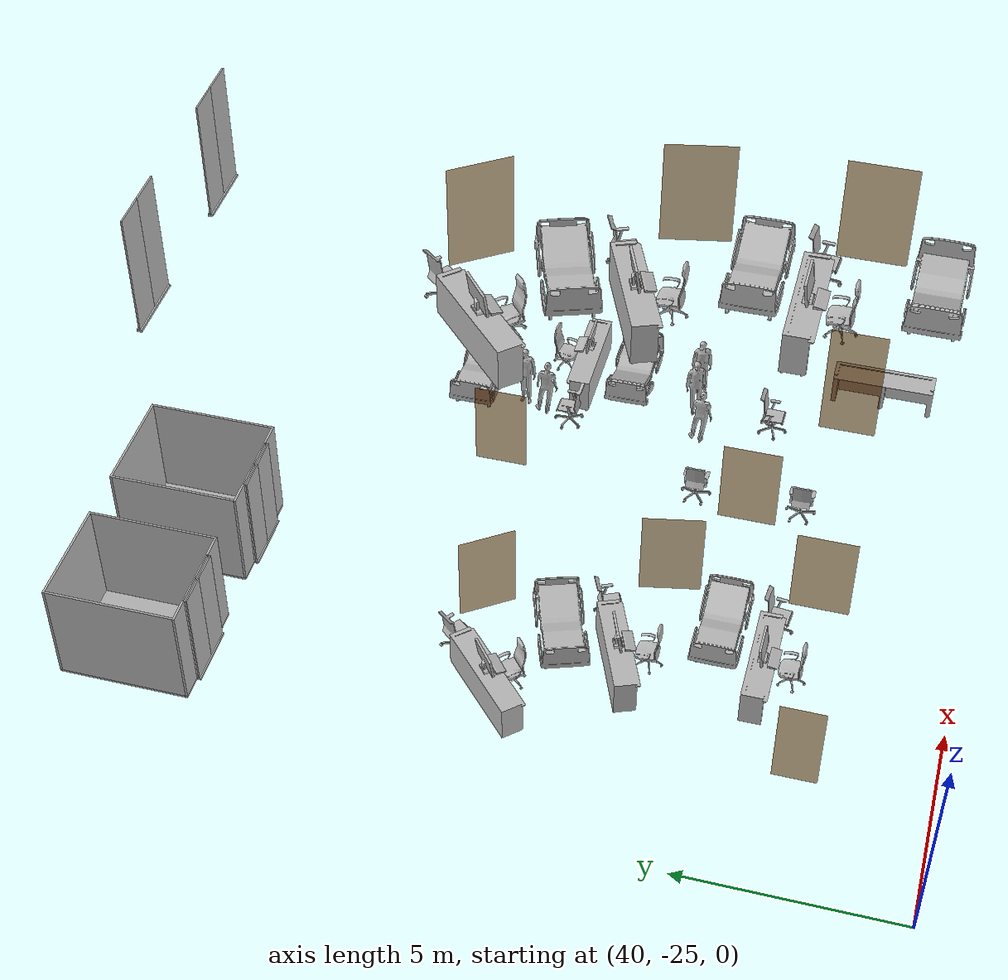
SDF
<sdf version="1.7">
 <world name="sim_world">
  <include>
   <name>OpenRobotics/CGMVanguard_9</name>
   <uri>model://CGMVanguard</uri>
   <pose>46.53240644590597 -19.81446098226993 0.0 0 0 -3.1416</pose>
   <static>True</static>
  </include>
  <include>
   <name>OpenRobotics/CGMVanguard_10</name>
   <uri>model://CGMVanguard</uri>
   <pose>45.574116380139266 -16.358101611476496 0.0 0 0 -2.7959</pose>
   <static>True</static>
  </include>
  <include>
   <name>OpenRobotics/CGMVanguard_11</name>
   <uri>model://CGMVanguard</uri>
   <pose>54.18809276566291 -16.056601669166582 0.0 0 0 0.0092</pose>
   <static>True</static>
  </include>
  <include>
   <name>OpenRobotics/CGMVanguard_12</name>
   <uri>model://CGMVanguard</uri>
   <pose>53.37574708665056 -12.342248375062509 0.0 0 0 -3.1416</pose>
   <static>True</static>
  </include>
  <include>
   <name>OpenRobotics/NurseTable_6</name>
   <uri>model://NurseTable</uri>
   <pose>54.19215799392336 -14.938960039998475 0.0 0 0 3.1416</pose>
   <static>True</static>
  </include>
  <include>
   <name>OpenRobotics/NurseTable_7</name>
   <uri>model://NurseTable</uri>
   <pose>44.96476289373489 -17.75605553632554 0.0 0 0 0.3883</pose>
   <static>True</static>
  </include>
  <include>
   <name>OpenRobotics/NurseTable_8</name>
   <uri>model://NurseTable</uri>
   <pose>43.50017691627249 -15.209822699126969 0.0 0 0 0.7491</pose>
   <static>True</static>
  </include>
  <include>
   <name>OpenRobotics/NurseTable_9</name>
   <uri>model://NurseTable</uri>
   <pose>45.44847121264571 -20.873358716972444 0.0 0 0 0.0053</pose>
   <static>True</static>
  </include>
  <include>
   <name>OpenRobotics/NurseTable_39</name>
   <uri>model://NurseTable</uri>
   <pose>55.14657128571983 -22.179885389023518 0.0 0 0 -1.5708</pose>
   <static>True</static>
  </include>
  <include>
   <name>OpenRobotics/DeskChair_30</name>
   <uri>model://DeskChair</uri>
   <pose>44.072970270374256 -15.638906195915554 0.0 0 0 2.263</pose>
   <static>True</static>
  </include>
  <include>
   <name>OpenRobotics/DeskChair_31</name>
   <uri>model://DeskChair</uri>
   <pose>45.34390600361529 -18.408080458443923 0.0 0 0 1.5708</pose>
   <static>True</static>
  </include>
  <include>
   <name>OpenRobotics/DeskChair_32</name>
   <uri>model://DeskChair</uri>
   <pose>45.6332371831853 -21.538925425945173 0.0 0 0 1.5708</pose>
   <static>True</static>
  </include>
  <include>
   <name>OpenRobotics/DeskChair_46</name>
   <uri>model://DeskChair</uri>
   <pose>54.57913541786859 -14.209534248682756 0.0 0 0 -1.715</pose>
   <static>True</static>
  </include>
  <include>
   <name>OpenRobotics/OfficeChairGrey_12</name>
   <uri>model://OfficeChairGrey</uri>
   <pose>53.49544248298147 -19.837371639552345 0.0 0 0 -0.016</pose>
   <static>True</static>
  </include>
  <include>
   <name>OpenRobotics/OfficeChairGrey_13</name>
   <uri>model://OfficeChairGrey</uri>
   <pose>52.55249798084694 -14.678946963578337 0.0 0 0 3.1246</pose>
   <static>True</static>
  </include>
  <include>
   <name>OpenRobotics/OfficeChairGrey_14</name>
   <uri>model://OfficeChairGrey</uri>
   <pose>44.86480135379412 -14.257401638398536 0.0 0 0 0.937</pose>
   <static>True</static>
  </include>
  <include>
   <name>OpenRobotics/OfficeChairGrey_15</name>
   <uri>model://OfficeChairGrey</uri>
   <pose>46.539890773431836 -17.36355909388102 0.0 0 0 0.4229</pose>
   <static>True</static>
  </include>
  <include>
   <name>OpenRobotics/OfficeChairGrey_16</name>
   <uri>model://OfficeChairGrey</uri>
   <pose>47.03910618822357 -21.11309949617324 0.0 0 0 -0.09</pose>
   <static>True</static>
  </include>
  <include>
   <name>OpenRobotics/OfficeChairGrey_43</name>
   <uri>model://OfficeChairGrey</uri>
   <pose>50.910684204453716 -18.35084419830008 0.0 0 0 1.5708</pose>
   <static>True</static>
  </include>
  <include>
   <name>OpenRobotics/OfficeChairGrey_44</name>
   <uri>model://OfficeChairGrey</uri>
   <pose>50.910684204453716 -20.88014307142035 0.0 0 0 1.5708</pose>
   <static>True</static>
  </include>
  <include>
   <name>OpenRobotics/MonitorAndKeyboard_41</name>
   <uri>model://MonitorAndKeyboard</uri>
   <pose>45.42830660359221 -20.883266028229702 0.86 0 0 1.5708</pose>
   <static>True</static>
  </include>
  <include>
   <name>OpenRobotics/MonitorAndKeyboard_44</name>
   <uri>model://MonitorAndKeyboard</uri>
   <pose>43.56648590438834 -15.17563170647284 0.86 0 0 2.255</pose>
   <static>True</static>
  </include>
  <include>
   <name>OpenRobotics/MonitorAndKeyboard_45</name>
   <uri>model://MonitorAndKeyboard</uri>
   <pose>45.00705742086847 -17.749325025960555 0.86 0 0 1.9445</pose>
   <static>True</static>
  </include>
  <include>
   <name>OpenRobotics/MonitorAndKeyboard_46</name>
   <uri>model://MonitorAndKeyboard</uri>
   <pose>54.451498019306996 -14.897580862274541 0.86 0 0 -1.5706</pose>
   <static>True</static>
  </include>
  <include>
   <name>OpenRobotics/OpScrubs</name>
   <uri>model://OpScrubs</uri>
   <pose>53.03362178377759 -13.572127995077125 0.0 0 0 -1.5513</pose>
   <static>True</static>
  </include>
  <include>
   <name>OpenRobotics/OpScrubs_2</name>
   <uri>model://OpScrubs</uri>
   <pose>53.69881158416989 -17.76114380216147 0.0 0 0 -1.1219</pose>
   <static>True</static>
  </include>
  <include>
   <name>OpenRobotics/OpScrubs_3</name>
   <uri>model://OpScrubs</uri>
   <pose>54.4627245105958 -17.74294450213455 0.0 0 0 -1.3103</pose>
   <static>True</static>
  </include>
  <include>
   <name>OpenRobotics/Scrubs</name>
   <uri>model://Scrubs</uri>
   <pose>52.69475404792128 -18.06555132494906 0.0 0 0 -0.0141</pose>
   <static>True</static>
  </include>
  <include>
   <name>OpenRobotics/Scrubs_3</name>
   <uri>model://Scrubs</uri>
   <pose>52.74878658513139 -14.176177839313883 0.0 0 0 0.1185</pose>
   <static>True</static>
  </include>
  <model name="L1_right_consult_rm_1_outer">
   <pose>46.068297373178 -14.530337294719446 0.0 0 0 2.1863116312176896</pose>
   <static>true</static>
   <link name="right">
    <pose>0 0 1.11 0 0 0</pose>
    <visual name="right_visual">
     <geometry><box><size>1.3227213939192073 0.03 2.2</size></box></geometry>
     <material>
      <ambient>0.5 0.25 0 0.6</ambient>
      <diffuse>0.5 0.25 0 0.6</diffuse>
      <pbr><metal><metalness>0.0</metalness></metal></pbr>
     </material>
    </visual>
    <collision name="right_collision">
     <geometry><box><size>1.3227213939192073 0.03 2.2</size></box></geometry>
     <surface><contact><collide_bitmask>0x02</collide_bitmask></contact></surface>
    </collision>
    <inertial>
     <mass>50.0</mass>
     <inertia><ixx>20.17041666666667</ixx><iyy>27.456632858048216</iyy><izz>7.293716191381544</izz></inertia>
    </inertial>
   </link>
   <joint name="right_joint" type="prismatic">
    <parent>world</parent>
    <child>right</child>
    <axis>
     <xyz>1 0 0</xyz>
     <limit><lower>0.0</lower><upper>1.3327213939192073</upper><effort>500.0</effort></limit>
    </axis>
   </joint>
  </model>
  <model name="L1_right_consult_rm_2_outer">
   <pose>47.68885619783859 -18.3893427175878 0.0 0 0 1.769259662102772</pose>
   <static>true</static>
   <link name="right">
    <pose>0 0 1.11 0 0 0</pose>
    <visual name="right_visual">
     <geometry><box><size>1.409133850260675 0.03 2.2</size></box></geometry>
     <material>
      <ambient>0.5 0.25 0 0.6</ambient>
      <diffuse>0.5 0.25 0 0.6</diffuse>
      <pbr><metal><metalness>0.0</metalness></metal></pbr>
     </material>
    </visual>
    <collision name="right_collision">
     <geometry><box><size>1.409133850260675 0.03 2.2</size></box></geometry>
     <surface><contact><collide_bitmask>0x02</collide_bitmask></contact></surface>
    </collision>
    <inertial>
     <mass>50.0</mass>
     <inertia><ixx>20.17041666666667</ixx><iyy>28.440242533126984</iyy><izz>8.277325866460309</izz></inertia>
    </inertial>
   </link>
   <joint name="right_joint" type="prismatic">
    <parent>world</parent>
    <child>right</child>
    <axis>
     <xyz>1 0 0</xyz>
     <limit><lower>0.0</lower><upper>1.419133850260675</upper><effort>500.0</effort></limit>
    </axis>
   </joint>
  </model>
  <model name="L1_right_consult_rm_3_outer">
   <pose>47.92979500788435 -21.793661782239163 0.0 0 0 1.5707963267948966</pose>
   <static>true</static>
   <link name="right">
    <pose>0 0 1.11 0 0 0</pose>
    <visual name="right_visual">
     <geometry><box><size>1.3657163186031285 0.03 2.2</size></box></geometry>
     <material>
      <ambient>0.5 0.25 0 0.6</ambient>
      <diffuse>0.5 0.25 0 0.6</diffuse>
      <pbr><metal><metalness>0.0</metalness></metal></pbr>
     </material>
    </visual>
    <collision name="right_collision">
     <geometry><box><size>1.3657163186031285 0.03 2.2</size></box></geometry>
     <surface><contact><collide_bitmask>0x02</collide_bitmask></contact></surface>
    </collision>
    <inertial>
     <mass>50.0</mass>
     <inertia><ixx>20.17041666666667</ixx><iyy>27.938254428745346</iyy><izz>7.775337762078674</izz></inertia>
    </inertial>
   </link>
   <joint name="right_joint" type="prismatic">
    <parent>world</parent>
    <child>right</child>
    <axis>
     <xyz>1 0 0</xyz>
     <limit><lower>0.0</lower><upper>1.3757163186031285</upper><effort>500.0</effort></limit>
    </axis>
   </joint>
  </model>
  <model name="L1_right_procedure">
   <pose>50.74072535671709 -13.553592169531953 0.0 0 0 1.5707963267948966</pose>
   <link name="right">
    <pose>0 0 1.11 0 0 0</pose>
    <visual name="right_visual">
     <geometry><box><size>1.2479862312987977 0.03 2.2</size></box></geometry>
     <material>
      <ambient>0.5 0.25 0 0.6</ambient>
      <diffuse>0.5 0.25 0 0.6</diffuse>
      <pbr><metal><metalness>0.0</metalness></metal></pbr>
     </material>
    </visual>
    <collision name="right_collision">
     <geometry><box><size>1.2479862312987977 0.03 2.2</size></box></geometry>
     <surface><contact><collide_bitmask>0x02</collide_bitmask></contact></surface>
    </collision>
    <inertial>
     <mass>50.0</mass>
     <inertia><ixx>20.17041666666667</ixx><iyy>26.656123472964072</iyy><izz>6.493206806297401</izz></inertia>
    </inertial>
   </link>
   <joint name="right_joint" type="prismatic">
    <parent>world</parent>
    <child>right</child>
    <axis>
     <xyz>1 0 0</xyz>
     <limit><lower>0.0</lower><upper>1.2579862312987977</upper><effort>500.0</effort></limit>
    </axis>
   </joint>
   <plugin name="door" filename="libdoor.so">
    <v_max_door>0.2</v_max_door>
    <a_max_door>0.2</a_max_door>
    <a_nom_door>0.08</a_nom_door>
    <dx_min_door>0.001</dx_min_door>
    <f_max_door>100.0</f_max_door>
    <door name="L1_right_procedure" type="SlidingDoor" left_joint_name="empty_joint" right_joint_name="right_joint"/>
   </plugin>
  </model>
  <model name="L1_right_treatment">
   <pose>50.29120803046041 -19.682408368908906 0.0 0 0 1.5707963267948966</pose>
   <link name="right">
    <pose>0 0 1.11 0 0 0</pose>
    <visual name="right_visual">
     <geometry><box><size>1.3636702434521746 0.03 2.2</size></box></geometry>
     <material>
      <ambient>0.5 0.25 0 0.6</ambient>
      <diffuse>0.5 0.25 0 0.6</diffuse>
      <pbr><metal><metalness>0.0</metalness></metal></pbr>
     </material>
    </visual>
    <collision name="right_collision">
     <geometry><box><size>1.3636702434521746 0.03 2.2</size></box></geometry>
     <surface><contact><collide_bitmask>0x02</collide_bitmask></contact></surface>
    </collision>
    <inertial>
     <mass>50.0</mass>
     <inertia><ixx>20.17041666666667</ixx><iyy>27.91498555365381</iyy><izz>7.7520688869871375</izz></inertia>
    </inertial>
   </link>
   <joint name="right_joint" type="prismatic">
    <parent>world</parent>
    <child>right</child>
    <axis>
     <xyz>1 0 0</xyz>
     <limit><lower>0.0</lower><upper>1.3736702434521746</upper><effort>500.0</effort></limit>
    </axis>
   </joint>
   <plugin name="door" filename="libdoor.so">
    <v_max_door>0.2</v_max_door>
    <a_max_door>0.2</a_max_door>
    <a_nom_door>0.08</a_nom_door>
    <dx_min_door>0.001</dx_min_door>
    <f_max_door>100.0</f_max_door>
    <door name="L1_right_treatment" type="SlidingDoor" left_joint_name="empty_joint" right_joint_name="right_joint"/>
   </plugin>
  </model>
  <model name="L1_right_consult_rm_3_inner">
   <pose>43.04524825968236 -22.06440329218109 0.0 0 0 -1.5707963267948966</pose>
   <static>true</static>
   <link name="right">
    <pose>0 0 1.11 0 0 0</pose>
    <visual name="right_visual">
     <geometry><box><size>0.9831271874158689 0.03 2.2</size></box></geometry>
     <material>
      <ambient>0.5 0.25 0 0.6</ambient>
      <diffuse>0.5 0.25 0 0.6</diffuse>
      <pbr><metal><metalness>0.0</metalness></metal></pbr>
     </material>
    </visual>
    <collision name="right_collision">
     <geometry><box><size>0.9831271874158689 0.03 2.2</size></box></geometry>
     <surface><contact><collide_bitmask>0x02</collide_bitmask></contact></surface>
    </collision>
    <inertial>
     <mass>50.0</mass>
     <inertia><ixx>20.17041666666667</ixx><iyy>24.193912777650993</iyy><izz>4.030996110984321</izz></inertia>
    </inertial>
   </link>
   <joint name="right_joint" type="prismatic">
    <parent>world</parent>
    <child>right</child>
    <axis>
     <xyz>1 0 0</xyz>
     <limit><lower>0.0</lower><upper>0.9931271874158689</upper><effort>500.0</effort></limit>
    </axis>
   </joint>
  </model>
  <include>
   <name>OpenRobotics/CGMVanguard_28</name>
   <uri>model://CGMVanguard</uri>
   <pose>46.58625052882586 -23.184696742433005 10.0 0 0 -0.0029</pose>
   <static>True</static>
  </include>
  <include>
   <name>OpenRobotics/CGMVanguard_29</name>
   <uri>model://CGMVanguard</uri>
   <pose>46.53240644590597 -19.81446098226993 10.0 0 0 -3.1416</pose>
   <static>True</static>
  </include>
  <include>
   <name>OpenRobotics/CGMVanguard_30</name>
   <uri>model://CGMVanguard</uri>
   <pose>45.574116380139266 -16.358101611476496 10.0 0 0 -2.7959</pose>
   <static>True</static>
  </include>
  <include>
   <name>OpenRobotics/NurseTable_49</name>
   <uri>model://NurseTable</uri>
   <pose>44.96476289373489 -17.75605553632554 10.0 0 0 0.3883</pose>
   <static>True</static>
  </include>
  <include>
   <name>OpenRobotics/NurseTable_50</name>
   <uri>model://NurseTable</uri>
   <pose>43.50017691627249 -15.209822699126969 10.0 0 0 0.7491</pose>
   <static>True</static>
  </include>
  <include>
   <name>OpenRobotics/NurseTable_51</name>
   <uri>model://NurseTable</uri>
   <pose>45.44847121264571 -20.873358716972444 10.0 0 0 0.0053</pose>
   <static>True</static>
  </include>
  <include>
   <name>OpenRobotics/DeskChair_70</name>
   <uri>model://DeskChair</uri>
   <pose>44.072970270374256 -15.638906195915554 10.0 0 0 2.263</pose>
   <static>True</static>
  </include>
  <include>
   <name>OpenRobotics/DeskChair_71</name>
   <uri>model://DeskChair</uri>
   <pose>45.34390600361529 -18.408080458443923 10.0 0 0 1.5708</pose>
   <static>True</static>
  </include>
  <include>
   <name>OpenRobotics/DeskChair_72</name>
   <uri>model://DeskChair</uri>
   <pose>45.6332371831853 -21.538925425945173 10.0 0 0 1.5708</pose>
   <static>True</static>
  </include>
  <include>
   <name>OpenRobotics/OfficeChairGrey_59</name>
   <uri>model://OfficeChairGrey</uri>
   <pose>44.86480135379412 -14.257401638398536 10.0 0 0 0.937</pose>
   <static>True</static>
  </include>
  <include>
   <name>OpenRobotics/OfficeChairGrey_60</name>
   <uri>model://OfficeChairGrey</uri>
   <pose>46.539890773431836 -17.36355909388102 10.0 0 0 0.4229</pose>
   <static>True</static>
  </include>
  <include>
   <name>OpenRobotics/OfficeChairGrey_61</name>
   <uri>model://OfficeChairGrey</uri>
   <pose>47.03910618822357 -21.11309949617324 10.0 0 0 -0.09</pose>
   <static>True</static>
  </include>
  <include>
   <name>OpenRobotics/MonitorAndKeyboard_84</name>
   <uri>model://MonitorAndKeyboard</uri>
   <pose>45.42830660359221 -20.883266028229702 10.86 0 0 1.5708</pose>
   <static>True</static>
  </include>
  <include>
   <name>OpenRobotics/MonitorAndKeyboard_87</name>
   <uri>model://MonitorAndKeyboard</uri>
   <pose>43.56648590438834 -15.17563170647284 10.86 0 0 2.255</pose>
   <static>True</static>
  </include>
  <include>
   <name>OpenRobotics/MonitorAndKeyboard_88</name>
   <uri>model://MonitorAndKeyboard</uri>
   <pose>45.00705742086847 -17.749325025960555 10.86 0 0 1.9445</pose>
   <static>True</static>
  </include>
  <model name="L2_right_consult_rm_1_outer">
   <pose>46.068297373178 -14.530337294719446 10.0 0 0 2.1863116312176896</pose>
   <static>true</static>
   <link name="right">
    <pose>0 0 1.11 0 0 0</pose>
    <visual name="right_visual">
     <geometry><box><size>1.3227213939192073 0.03 2.2</size></box></geometry>
     <material>
      <ambient>0.5 0.25 0 0.6</ambient>
      <diffuse>0.5 0.25 0 0.6</diffuse>
      <pbr><metal><metalness>0.0</metalness></metal></pbr>
     </material>
    </visual>
    <collision name="right_collision">
     <geometry><box><size>1.3227213939192073 0.03 2.2</size></box></geometry>
     <surface><contact><collide_bitmask>0x02</collide_bitmask></contact></surface>
    </collision>
    <inertial>
     <mass>50.0</mass>
     <inertia><ixx>20.17041666666667</ixx><iyy>27.456632858048216</iyy><izz>7.293716191381544</izz></inertia>
    </inertial>
   </link>
   <joint name="right_joint" type="prismatic">
    <parent>world</parent>
    <child>right</child>
    <axis>
     <xyz>1 0 0</xyz>
     <limit><lower>0.0</lower><upper>1.3327213939192073</upper><effort>500.0</effort></limit>
    </axis>
   </joint>
  </model>
  <model name="L2_right_consult_rm_2_outer">
   <pose>47.68885619783859 -18.3893427175878 10.0 0 0 1.769259662102772</pose>
   <static>true</static>
   <link name="right">
    <pose>0 0 1.11 0 0 0</pose>
    <visual name="right_visual">
     <geometry><box><size>1.409133850260675 0.03 2.2</size></box></geometry>
     <material>
      <ambient>0.5 0.25 0 0.6</ambient>
      <diffuse>0.5 0.25 0 0.6</diffuse>
      <pbr><metal><metalness>0.0</metalness></metal></pbr>
     </material>
    </visual>
    <collision name="right_collision">
     <geometry><box><size>1.409133850260675 0.03 2.2</size></box></geometry>
     <surface><contact><collide_bitmask>0x02</collide_bitmask></contact></surface>
    </collision>
    <inertial>
     <mass>50.0</mass>
     <inertia><ixx>20.17041666666667</ixx><iyy>28.440242533126984</iyy><izz>8.277325866460309</izz></inertia>
    </inertial>
   </link>
   <joint name="right_joint" type="prismatic">
    <parent>world</parent>
    <child>right</child>
    <axis>
     <xyz>1 0 0</xyz>
     <limit><lower>0.0</lower><upper>1.419133850260675</upper><effort>500.0</effort></limit>
    </axis>
   </joint>
  </model>
  <model name="L2_right_consult_rm_3_outer">
   <pose>47.92979500788435 -21.793661782239163 10.0 0 0 1.5707963267948966</pose>
   <static>true</static>
   <link name="right">
    <pose>0 0 1.11 0 0 0</pose>
    <visual name="right_visual">
     <geometry><box><size>1.3657163186031285 0.03 2.2</size></box></geometry>
     <material>
      <ambient>0.5 0.25 0 0.6</ambient>
      <diffuse>0.5 0.25 0 0.6</diffuse>
      <pbr><metal><metalness>0.0</metalness></metal></pbr>
     </material>
    </visual>
    <collision name="right_collision">
     <geometry><box><size>1.3657163186031285 0.03 2.2</size></box></geometry>
     <surface><contact><collide_bitmask>0x02</collide_bitmask></contact></surface>
    </collision>
    <inertial>
     <mass>50.0</mass>
     <inertia><ixx>20.17041666666667</ixx><iyy>27.938254428745346</iyy><izz>7.775337762078674</izz></inertia>
    </inertial>
   </link>
   <joint name="right_joint" type="prismatic">
    <parent>world</parent>
    <child>right</child>
    <axis>
     <xyz>1 0 0</xyz>
     <limit><lower>0.0</lower><upper>1.3757163186031285</upper><effort>500.0</effort></limit>
    </axis>
   </joint>
  </model>
  <model name="L2_right_consult_rm_3_inner">
   <pose>43.04524825968236 -22.06440329218109 10.0 0 0 -1.5707963267948966</pose>
   <static>true</static>
   <link name="right">
    <pose>0 0 1.11 0 0 0</pose>
    <visual name="right_visual">
     <geometry><box><size>0.9831271874158689 0.03 2.2</size></box></geometry>
     <material>
      <ambient>0.5 0.25 0 0.6</ambient>
      <diffuse>0.5 0.25 0 0.6</diffuse>
      <pbr><metal><metalness>0.0</metalness></metal></pbr>
     </material>
    </visual>
    <collision name="right_collision">
     <geometry><box><size>0.9831271874158689 0.03 2.2</size></box></geometry>
     <surface><contact><collide_bitmask>0x02</collide_bitmask></contact></surface>
    </collision>
    <inertial>
     <mass>50.0</mass>
     <inertia><ixx>20.17041666666667</ixx><iyy>24.193912777650993</iyy><izz>4.030996110984321</izz></inertia>
    </inertial>
   </link>
   <joint name="right_joint" type="prismatic">
    <parent>world</parent>
    <child>right</child>
    <axis>
     <xyz>1 0 0</xyz>
     <limit><lower>0.0</lower><upper>0.9931271874158689</upper><effort>500.0</effort></limit>
    </axis>
   </joint>
  </model>
  <model name="ShaftDoor_lift_1_L1_lift_1_door">
   <pose>43.072797723889636 -8.980481477122195 0.0 0 0 3.14</pose>
   <link name="right_door">
    <pose>0.35 0 1.25 0 0 0</pose>
    <visual name="right_door_visual">
     <geometry><box><size>0.7 0.03 2.5</size></box></geometry>
     <material>
      <ambient>0.5 0.5 0.5 1</ambient>
      <diffuse>0.7 0.7 0.7 1</diffuse>
      <specular>0.6 0.6 0.6 1</specular>
      <emissive>0.1 0.1 0.1 1</emissive>
     </material>
    </visual>
    <collision name="right_door_collision">
     <geometry><box><size>0.7 0.03 2.5</size></box></geometry>
     <surface><contact><collide_bitmask>0x02</collide_bitmask></contact></surface>
    </collision>
   </link>
   <joint name="right_joint" type="prismatic">
    <parent>world</parent>
    <child>right_door</child>
    <axis><xyz>1 0 0</xyz><limit><lower>0</lower><upper>0.7</upper></limit></axis>
   </joint>
   <link name="left_door">
    <pose>-0.35 0 1.25 0 0 0</pose>
    <visual name="left_door_visual">
     <geometry><box><size>0.7 0.03 2.5</size></box></geometry>
     <material>
      <ambient>0.5 0.5 0.5 1</ambient>
      <diffuse>0.7 0.7 0.7 1</diffuse>
      <specular>0.6 0.6 0.6 1</specular>
      <emissive>0.1 0.1 0.1 1</emissive>
     </material>
    </visual>
    <collision name="left_door_collision">
     <geometry><box><size>0.7 0.03 2.5</size></box></geometry>
     <surface><contact><collide_bitmask>0x02</collide_bitmask></contact></surface>
    </collision>
   </link>
   <joint name="left_joint" type="prismatic">
    <parent>world</parent>
    <child>left_door</child>
    <axis><xyz>1 0 0</xyz><limit><lower>-0.7</lower><upper>0</upper></limit></axis>
   </joint>
   <link name="ramp">
    <pose>0 0 -0.025 0 0 0</pose>
    <visual name="ramp_visual">
     <geometry><box><size>1.4 0.1 0.05</size></box></geometry>
     <material>
      <ambient>0.5 0.5 0.5 1</ambient>
      <diffuse>0.7 0.7 0.7 1</diffuse>
      <specular>0.6 0.6 0.6 1</specular>
      <emissive>0.1 0.1 0.1 1</emissive>
     </material>
    </visual>
    <collision name="ramp_collision">
     <geometry><box><size>1.4 0.1 0.05</size></box></geometry>
     <surface><contact><collide_bitmask>0x02</collide_bitmask></contact></surface>
    </collision>
   </link>
   <joint name="ramp_joint" type="fixed"><parent>world</parent><child>ramp</child></joint>
   <plugin name="door" filename="libdoor.so">
    <v_max_door>0.3</v_max_door>
    <a_max_door>0.2</a_max_door>
    <a_nom_door>0.1</a_nom_door>
    <dx_min_door>0.0001</dx_min_door>
    <f_max_door>35.0</f_max_door>
    <door left_joint_name="left_joint" name="ShaftDoor_lift_1_L1_lift_1_door" right_joint_name="right_joint" type="DoubleSlidingDoor"/>
   </plugin>
  </model>
  <model name="ShaftDoor_lift_1_L2_lift_1_door">
   <pose>43.072797723889636 -8.980481477122195 10.0 0 0 3.14</pose>
   <link name="right_door">
    <pose>0.35 0 1.25 0 0 0</pose>
    <visual name="right_door_visual">
     <geometry><box><size>0.7 0.03 2.5</size></box></geometry>
     <material>
      <ambient>0.5 0.5 0.5 1</ambient>
      <diffuse>0.7 0.7 0.7 1</diffuse>
      <specular>0.6 0.6 0.6 1</specular>
      <emissive>0.1 0.1 0.1 1</emissive>
     </material>
    </visual>
    <collision name="right_door_collision">
     <geometry><box><size>0.7 0.03 2.5</size></box></geometry>
     <surface><contact><collide_bitmask>0x02</collide_bitmask></contact></surface>
    </collision>
   </link>
   <joint name="right_joint" type="prismatic">
    <parent>world</parent>
    <child>right_door</child>
    <axis><xyz>1 0 0</xyz><limit><lower>0</lower><upper>0.7</upper></limit></axis>
   </joint>
   <link name="left_door">
    <pose>-0.35 0 1.25 0 0 0</pose>
    <visual name="left_door_visual">
     <geometry><box><size>0.7 0.03 2.5</size></box></geometry>
     <material>
      <ambient>0.5 0.5 0.5 1</ambient>
      <diffuse>0.7 0.7 0.7 1</diffuse>
      <specular>0.6 0.6 0.6 1</specular>
      <emissive>0.1 0.1 0.1 1</emissive>
     </material>
    </visual>
    <collision name="left_door_collision">
     <geometry><box><size>0.7 0.03 2.5</size></box></geometry>
     <surface><contact><collide_bitmask>0x02</collide_bitmask></contact></surface>
    </collision>
   </link>
   <joint name="left_joint" type="prismatic">
    <parent>world</parent>
    <child>left_door</child>
    <axis><xyz>1 0 0</xyz><limit><lower>-0.7</lower><upper>0</upper></limit></axis>
   </joint>
   <link name="ramp">
    <pose>0 0 -0.025 0 0 0</pose>
    <visual name="ramp_visual">
     <geometry><box><size>1.4 0.1 0.05</size></box></geometry>
     <material>
      <ambient>0.5 0.5 0.5 1</ambient>
      <diffuse>0.7 0.7 0.7 1</diffuse>
      <specular>0.6 0.6 0.6 1</specular>
      <emissive>0.1 0.1 0.1 1</emissive>
     </material>
    </visual>
    <collision name="ramp_collision">
     <geometry><box><size>1.4 0.1 0.05</size></box></geometry>
     <surface><contact><collide_bitmask>0x02</collide_bitmask></contact></surface>
    </collision>
   </link>
   <joint name="ramp_joint" type="fixed"><parent>world</parent><child>ramp</child></joint>
   <plugin name="door" filename="libdoor.so">
    <v_max_door>0.3</v_max_door>
    <a_max_door>0.2</a_max_door>
    <a_nom_door>0.1</a_nom_door>
    <dx_min_door>0.0001</dx_min_door>
    <f_max_door>35.0</f_max_door>
    <door left_joint_name="left_joint" name="ShaftDoor_lift_1_L2_lift_1_door" right_joint_name="right_joint" type="DoubleSlidingDoor"/>
   </plugin>
  </model>
  <model name="lift_1">
   <link name="platform">
    <inertial><mass>1200</mass><inertia><ixx>625.25</ixx><iyy>900.25</iyy><izz>1525.0</izz></inertia></inertial>
    <visual name="floor">
     <pose>0 0 -0.025 0 0 0</pose>
     <geometry><box><size>2.5 3.0 0.05</size></box></geometry>
     <material>
      <ambient>0.5 0.5 0.5 1</ambient>
      <diffuse>0.7 0.7 0.7 1</diffuse>
      <specular>0.6 0.6 0.6 1</specular>
      <emissive>0.1 0.1 0.1 1</emissive>
     </material>
    </visual>
    <collision name="floor">
     <pose>0 0 -0.025 0 0 0</pose>
     <geometry><box><size>2.5 3.0 0.05</size></box></geometry>
     <surface><contact><collide_bitmask>0x01</collide_bitmask></contact></surface>
    </collision>
    <visual name="frontwall1">
     <pose>-0.975 1.475 1.25 0 0 0</pose>
     <geometry><box><size>0.55 0.05 2.5</size></box></geometry>
     <material>
      <ambient>0.5 0.5 0.5 1</ambient>
      <diffuse>0.7 0.7 0.7 1</diffuse>
      <specular>0.6 0.6 0.6 1</specular>
      <emissive>0.1 0.1 0.1 1</emissive>
     </material>
    </visual>
    <collision name="frontwall1">
     <pose>-0.975 1.475 1.25 0 0 0</pose>
     <geometry><box><size>0.55 0.05 2.5</size></box></geometry>
     <surface><contact><collide_bitmask>0x01</collide_bitmask></contact></surface>
    </collision>
    <visual name="frontwall2">
     <pose>0.975 1.475 1.25 0 0 0</pose>
     <geometry><box><size>0.55 0.05 2.5</size></box></geometry>
     <material>
      <ambient>0.5 0.5 0.5 1</ambient>
      <diffuse>0.7 0.7 0.7 1</diffuse>
      <specular>0.6 0.6 0.6 1</specular>
      <emissive>0.1 0.1 0.1 1</emissive>
     </material>
    </visual>
    <collision name="frontwall2">
     <pose>0.975 1.475 1.25 0 0 0</pose>
     <geometry><box><size>0.55 0.05 2.5</size></box></geometry>
     <surface><contact><collide_bitmask>0x01</collide_bitmask></contact></surface>
    </collision>
    <visual name="backwall1">
     <pose>0.0 -1.475 1.25 0 0 0</pose>
     <geometry><box><size>2.5 0.05 2.5</size></box></geometry>
     <material>
      <ambient>0.5 0.5 0.5 1</ambient>
      <diffuse>0.7 0.7 0.7 1</diffuse>
      <specular>0.6 0.6 0.6 1</specular>
      <emissive>0.1 0.1 0.1 1</emissive>
     </material>
    </visual>
    <collision name="backwall1">
     <pose>0.0 -1.475 1.25 0 0 0</pose>
     <geometry><box><size>2.5 0.05 2.5</size></box></geometry>
     <surface><contact><collide_bitmask>0x01</collide_bitmask></contact></surface>
    </collision>
    <visual name="leftwall1">
     <pose>-1.225 0.0 1.25 0 0 1.5707963267948966</pose>
     <geometry><box><size>2.9 0.05 2.5</size></box></geometry>
     <material>
      <ambient>0.5 0.5 0.5 1</ambient>
      <diffuse>0.7 0.7 0.7 1</diffuse>
      <specular>0.6 0.6 0.6 1</specular>
      <emissive>0.1 0.1 0.1 1</emissive>
     </material>
    </visual>
    <collision name="leftwall1">
     <pose>-1.225 0.0 1.25 0 0 1.5707963267948966</pose>
     <geometry><box><size>2.9 0.05 2.5</size></box></geometry>
     <surface><contact><collide_bitmask>0x01</collide_bitmask></contact></surface>
    </collision>
    <visual name="rightwall1">
     <pose>1.225 0.0 1.25 0 0 1.5707963267948966</pose>
     <geometry><box><size>2.9 0.05 2.5</size></box></geometry>
     <material>
      <ambient>0.5 0.5 0.5 1</ambient>
      <diffuse>0.7 0.7 0.7 1</diffuse>
      <specular>0.6 0.6 0.6 1</specular>
      <emissive>0.1 0.1 0.1 1</emissive>
     </material>
    </visual>
    <collision name="rightwall1">
     <pose>1.225 0.0 1.25 0 0 1.5707963267948966</pose>
     <geometry><box><size>2.9 0.05 2.5</size></box></geometry>
     <surface><contact><collide_bitmask>0x01</collide_bitmask></contact></surface>
    </collision>
   </link>
   <joint name="cabin_joint" type="prismatic">
    <parent>world</parent>
    <child>platform</child>
    <axis><xyz>0 0 1</xyz></axis>
   </joint>
   <link name="CabinDoor_lift_1_lift_1_door_right_door">
    <pose>0.35 1.475 1.25 0 0 0.0</pose>
    <visual name="CabinDoor_lift_1_lift_1_door_right_door_visual">
     <geometry><box><size>0.7 0.03 2.5</size></box></geometry>
     <material>
      <ambient>0.5 0.5 0.5 1</ambient>
      <diffuse>0.7 0.7 0.7 1</diffuse>
      <specular>0.6 0.6 0.6 1</specular>
      <emissive>0.1 0.1 0.1 1</emissive>
     </material>
    </visual>
    <collision name="CabinDoor_lift_1_lift_1_door_right_door_collision">
     <geometry><box><size>0.7 0.03 2.5</size></box></geometry>
     <surface><contact><collide_bitmask>0x02</collide_bitmask></contact></surface>
    </collision>
   </link>
   <joint name="CabinDoor_lift_1_lift_1_door_right_joint" type="prismatic">
    <parent>platform</parent>
    <child>CabinDoor_lift_1_lift_1_door_right_door</child>
    <axis><xyz>1 0 0</xyz><limit><lower>0</lower><upper>0.7</upper></limit></axis>
   </joint>
   <link name="CabinDoor_lift_1_lift_1_door_left_door">
    <pose>-0.35 1.475 1.25 0 0 0.0</pose>
    <visual name="CabinDoor_lift_1_lift_1_door_left_door_visual">
     <geometry><box><size>0.7 0.03 2.5</size></box></geometry>
     <material>
      <ambient>0.5 0.5 0.5 1</ambient>
      <diffuse>0.7 0.7 0.7 1</diffuse>
      <specular>0.6 0.6 0.6 1</specular>
      <emissive>0.1 0.1 0.1 1</emissive>
     </material>
    </visual>
    <collision name="CabinDoor_lift_1_lift_1_door_left_door_collision">
     <geometry><box><size>0.7 0.03 2.5</size></box></geometry>
     <surface><contact><collide_bitmask>0x02</collide_bitmask></contact></surface>
    </collision>
   </link>
   <joint name="CabinDoor_lift_1_lift_1_door_left_joint" type="prismatic">
    <parent>platform</parent>
    <child>CabinDoor_lift_1_lift_1_door_left_door</child>
    <axis><xyz>1 0 0</xyz><limit><lower>-0.7</lower><upper>0</upper></limit></axis>
   </joint>
   <plugin name="door" filename="libdoor.so">
    <v_max_door>0.3</v_max_door>
    <a_max_door>0.2</a_max_door>
    <a_nom_door>0.1</a_nom_door>
    <dx_min_door>0.0001</dx_min_door>
    <f_max_door>35.0</f_max_door>
    <door left_joint_name="CabinDoor_lift_1_lift_1_door_left_joint" name="CabinDoor_lift_1_lift_1_door" right_joint_name="CabinDoor_lift_1_lift_1_door_right_joint" type="DoubleSlidingDoor"/>
   </plugin>
   <plugin name="lift" filename="liblift.so">
    <lift_name>lift_1</lift_name>
    <floor name="L1" elevation="0.0">
     <door_pair cabin_door="CabinDoor_lift_1_lift_1_door" shaft_door="ShaftDoor_lift_1_L1_lift_1_door"/>
    </floor>
    <floor name="L2" elevation="10.0">
     <door_pair cabin_door="CabinDoor_lift_1_lift_1_door" shaft_door="ShaftDoor_lift_1_L2_lift_1_door"/>
    </floor>
    <initial_floor>L1</initial_floor>
    <v_max_cabin>2.0</v_max_cabin>
    <a_max_cabin>1.2</a_max_cabin>
    <a_nom_cabin>1.0</a_nom_cabin>
    <dx_min_cabin>0.001</dx_min_cabin>
    <f_max_cabin>25323.0</f_max_cabin>
    <cabin_joint_name>cabin_joint</cabin_joint_name>
   </plugin>
   <pose>43.07526633591019 -7.430483442944508 0 0 0 3.14</pose>
  </model>
  <model name="ShaftDoor_lift_2_L1_name">
   <pose>46.70727332098206 -8.980481477122195 0.0 0 0 3.14</pose>
   <link name="right_door">
    <pose>0.35 0 1.25 0 0 0</pose>
    <visual name="right_door_visual">
     <geometry><box><size>0.7 0.03 2.5</size></box></geometry>
     <material>
      <ambient>0.5 0.5 0.5 1</ambient>
      <diffuse>0.7 0.7 0.7 1</diffuse>
      <specular>0.6 0.6 0.6 1</specular>
      <emissive>0.1 0.1 0.1 1</emissive>
     </material>
    </visual>
    <collision name="right_door_collision">
     <geometry><box><size>0.7 0.03 2.5</size></box></geometry>
     <surface><contact><collide_bitmask>0x02</collide_bitmask></contact></surface>
    </collision>
   </link>
   <joint name="right_joint" type="prismatic">
    <parent>world</parent>
    <child>right_door</child>
    <axis><xyz>1 0 0</xyz><limit><lower>0</lower><upper>0.7</upper></limit></axis>
   </joint>
   <link name="left_door">
    <pose>-0.35 0 1.25 0 0 0</pose>
    <visual name="left_door_visual">
     <geometry><box><size>0.7 0.03 2.5</size></box></geometry>
     <material>
      <ambient>0.5 0.5 0.5 1</ambient>
      <diffuse>0.7 0.7 0.7 1</diffuse>
      <specular>0.6 0.6 0.6 1</specular>
      <emissive>0.1 0.1 0.1 1</emissive>
     </material>
    </visual>
    <collision name="left_door_collision">
     <geometry><box><size>0.7 0.03 2.5</size></box></geometry>
     <surface><contact><collide_bitmask>0x02</collide_bitmask></contact></surface>
    </collision>
   </link>
   <joint name="left_joint" type="prismatic">
    <parent>world</parent>
    <child>left_door</child>
    <axis><xyz>1 0 0</xyz><limit><lower>-0.7</lower><upper>0</upper></limit></axis>
   </joint>
   <link name="ramp">
    <pose>0 0 -0.025 0 0 0</pose>
    <visual name="ramp_visual">
     <geometry><box><size>1.4 0.1 0.05</size></box></geometry>
     <material>
      <ambient>0.5 0.5 0.5 1</ambient>
      <diffuse>0.7 0.7 0.7 1</diffuse>
      <specular>0.6 0.6 0.6 1</specular>
      <emissive>0.1 0.1 0.1 1</emissive>
     </material>
    </visual>
    <collision name="ramp_collision">
     <geometry><box><size>1.4 0.1 0.05</size></box></geometry>
     <surface><contact><collide_bitmask>0x02</collide_bitmask></contact></surface>
    </collision>
   </link>
   <joint name="ramp_joint" type="fixed"><parent>world</parent><child>ramp</child></joint>
  </model>
  <model name="ShaftDoor_lift_2_L2_name">
   <pose>46.70727332098206 -8.980481477122195 10.0 0 0 3.14</pose>
   <link name="right_door">
    <pose>0.35 0 1.25 0 0 0</pose>
    <visual name="right_door_visual">
     <geometry><box><size>0.7 0.03 2.5</size></box></geometry>
     <material>
      <ambient>0.5 0.5 0.5 1</ambient>
      <diffuse>0.7 0.7 0.7 1</diffuse>
      <specular>0.6 0.6 0.6 1</specular>
      <emissive>0.1 0.1 0.1 1</emissive>
     </material>
    </visual>
    <collision name="right_door_collision">
     <geometry><box><size>0.7 0.03 2.5</size></box></geometry>
     <surface><contact><collide_bitmask>0x02</collide_bitmask></contact></surface>
    </collision>
   </link>
   <joint name="right_joint" type="prismatic">
    <parent>world</parent>
    <child>right_door</child>
    <axis><xyz>1 0 0</xyz><limit><lower>0</lower><upper>0.7</upper></limit></axis>
   </joint>
   <link name="left_door">
    <pose>-0.35 0 1.25 0 0 0</pose>
    <visual name="left_door_visual">
     <geometry><box><size>0.7 0.03 2.5</size></box></geometry>
     <material>
      <ambient>0.5 0.5 0.5 1</ambient>
      <diffuse>0.7 0.7 0.7 1</diffuse>
      <specular>0.6 0.6 0.6 1</specular>
      <emissive>0.1 0.1 0.1 1</emissive>
     </material>
    </visual>
    <collision name="left_door_collision">
     <geometry><box><size>0.7 0.03 2.5</size></box></geometry>
     <surface><contact><collide_bitmask>0x02</collide_bitmask></contact></surface>
    </collision>
   </link>
   <joint name="left_joint" type="prismatic">
    <parent>world</parent>
    <child>left_door</child>
    <axis><xyz>1 0 0</xyz><limit><lower>-0.7</lower><upper>0</upper></limit></axis>
   </joint>
   <link name="ramp">
    <pose>0 0 -0.025 0 0 0</pose>
    <visual name="ramp_visual">
     <geometry><box><size>1.4 0.1 0.05</size></box></geometry>
     <material>
      <ambient>0.5 0.5 0.5 1</ambient>
      <diffuse>0.7 0.7 0.7 1</diffuse>
      <specular>0.6 0.6 0.6 1</specular>
      <emissive>0.1 0.1 0.1 1</emissive>
     </material>
    </visual>
    <collision name="ramp_collision">
     <geometry><box><size>1.4 0.1 0.05</size></box></geometry>
     <surface><contact><collide_bitmask>0x02</collide_bitmask></contact></surface>
    </collision>
   </link>
   <joint name="ramp_joint" type="fixed"><parent>world</parent><child>ramp</child></joint>
  </model>
  <model name="lift_2">
   <link name="platform">
    <inertial><mass>1200</mass><inertia><ixx>625.25</ixx><iyy>900.25</iyy><izz>1525.0</izz></inertia></inertial>
    <visual name="floor">
     <pose>0 0 -0.025 0 0 0</pose>
     <geometry><box><size>2.5 3.0 0.05</size></box></geometry>
     <material>
      <ambient>0.5 0.5 0.5 1</ambient>
      <diffuse>0.7 0.7 0.7 1</diffuse>
      <specular>0.6 0.6 0.6 1</specular>
      <emissive>0.1 0.1 0.1 1</emissive>
     </material>
    </visual>
    <collision name="floor">
     <pose>0 0 -0.025 0 0 0</pose>
     <geometry><box><size>2.5 3.0 0.05</size></box></geometry>
     <surface><contact><collide_bitmask>0x01</collide_bitmask></contact></surface>
    </collision>
    <visual name="frontwall1">
     <pose>-0.975 1.475 1.25 0 0 0</pose>
     <geometry><box><size>0.55 0.05 2.5</size></box></geometry>
     <material>
      <ambient>0.5 0.5 0.5 1</ambient>
      <diffuse>0.7 0.7 0.7 1</diffuse>
      <specular>0.6 0.6 0.6 1</specular>
      <emissive>0.1 0.1 0.1 1</emissive>
     </material>
    </visual>
    <collision name="frontwall1">
     <pose>-0.975 1.475 1.25 0 0 0</pose>
     <geometry><box><size>0.55 0.05 2.5</size></box></geometry>
     <surface><contact><collide_bitmask>0x01</collide_bitmask></contact></surface>
    </collision>
    <visual name="frontwall2">
     <pose>0.975 1.475 1.25 0 0 0</pose>
     <geometry><box><size>0.55 0.05 2.5</size></box></geometry>
     <material>
      <ambient>0.5 0.5 0.5 1</ambient>
      <diffuse>0.7 0.7 0.7 1</diffuse>
      <specular>0.6 0.6 0.6 1</specular>
      <emissive>0.1 0.1 0.1 1</emissive>
     </material>
    </visual>
    <collision name="frontwall2">
     <pose>0.975 1.475 1.25 0 0 0</pose>
     <geometry><box><size>0.55 0.05 2.5</size></box></geometry>
     <surface><contact><collide_bitmask>0x01</collide_bitmask></contact></surface>
    </collision>
    <visual name="backwall1">
     <pose>0.0 -1.475 1.25 0 0 0</pose>
     <geometry><box><size>2.5 0.05 2.5</size></box></geometry>
     <material>
      <ambient>0.5 0.5 0.5 1</ambient>
      <diffuse>0.7 0.7 0.7 1</diffuse>
      <specular>0.6 0.6 0.6 1</specular>
      <emissive>0.1 0.1 0.1 1</emissive>
     </material>
    </visual>
    <collision name="backwall1">
     <pose>0.0 -1.475 1.25 0 0 0</pose>
     <geometry><box><size>2.5 0.05 2.5</size></box></geometry>
     <surface><contact><collide_bitmask>0x01</collide_bitmask></contact></surface>
    </collision>
    <visual name="leftwall1">
     <pose>-1.225 0.0 1.25 0 0 1.5707963267948966</pose>
     <geometry><box><size>2.9 0.05 2.5</size></box></geometry>
     <material>
      <ambient>0.5 0.5 0.5 1</ambient>
      <diffuse>0.7 0.7 0.7 1</diffuse>
      <specular>0.6 0.6 0.6 1</specular>
      <emissive>0.1 0.1 0.1 1</emissive>
     </material>
    </visual>
    <collision name="leftwall1">
     <pose>-1.225 0.0 1.25 0 0 1.5707963267948966</pose>
     <geometry><box><size>2.9 0.05 2.5</size></box></geometry>
     <surface><contact><collide_bitmask>0x01</collide_bitmask></contact></surface>
    </collision>
    <visual name="rightwall1">
     <pose>1.225 0.0 1.25 0 0 1.5707963267948966</pose>
     <geometry><box><size>2.9 0.05 2.5</size></box></geometry>
     <material>
      <ambient>0.5 0.5 0.5 1</ambient>
      <diffuse>0.7 0.7 0.7 1</diffuse>
      <specular>0.6 0.6 0.6 1</specular>
      <emissive>0.1 0.1 0.1 1</emissive>
     </material>
    </visual>
    <collision name="rightwall1">
     <pose>1.225 0.0 1.25 0 0 1.5707963267948966</pose>
     <geometry><box><size>2.9 0.05 2.5</size></box></geometry>
     <surface><contact><collide_bitmask>0x01</collide_bitmask></contact></surface>
    </collision>
   </link>
   <joint name="cabin_joint" type="prismatic">
    <parent>world</parent>
    <child>platform</child>
    <axis><xyz>0 0 1</xyz></axis>
   </joint>
   <link name="CabinDoor_lift_2_name_right_door">
    <pose>0.35 1.475 1.25 0 0 0.0</pose>
    <visual name="CabinDoor_lift_2_name_right_door_visual">
     <geometry><box><size>0.7 0.03 2.5</size></box></geometry>
     <material>
      <ambient>0.5 0.5 0.5 1</ambient>
      <diffuse>0.7 0.7 0.7 1</diffuse>
      <specular>0.6 0.6 0.6 1</specular>
      <emissive>0.1 0.1 0.1 1</emissive>
     </material>
    </visual>
    <collision name="CabinDoor_lift_2_name_right_door_collision">
     <geometry><box><size>0.7 0.03 2.5</size></box></geometry>
     <surface><contact><collide_bitmask>0x02</collide_bitmask></contact></surface>
    </collision>
   </link>
   <joint name="CabinDoor_lift_2_name_right_joint" type="prismatic">
    <parent>platform</parent>
    <child>CabinDoor_lift_2_name_right_door</child>
    <axis><xyz>1 0 0</xyz><limit><lower>0</lower><upper>0.7</upper></limit></axis>
   </joint>
   <link name="CabinDoor_lift_2_name_left_door">
    <pose>-0.35 1.475 1.25 0 0 0.0</pose>
    <visual name="CabinDoor_lift_2_name_left_door_visual">
     <geometry><box><size>0.7 0.03 2.5</size></box></geometry>
     <material>
      <ambient>0.5 0.5 0.5 1</ambient>
      <diffuse>0.7 0.7 0.7 1</diffuse>
      <specular>0.6 0.6 0.6 1</specular>
      <emissive>0.1 0.1 0.1 1</emissive>
     </material>
    </visual>
    <collision name="CabinDoor_lift_2_name_left_door_collision">
     <geometry><box><size>0.7 0.03 2.5</size></box></geometry>
     <surface><contact><collide_bitmask>0x02</collide_bitmask></contact></surface>
    </collision>
   </link>
   <joint name="CabinDoor_lift_2_name_left_joint" type="prismatic">
    <parent>platform</parent>
    <child>CabinDoor_lift_2_name_left_door</child>
    <axis><xyz>1 0 0</xyz><limit><lower>-0.7</lower><upper>0</upper></limit></axis>
   </joint>
   <static>true</static>
   <pose>46.70974193300262 -7.430483442944508 0 0 0 3.14</pose>
  </model>
 </world>
</sdf>
